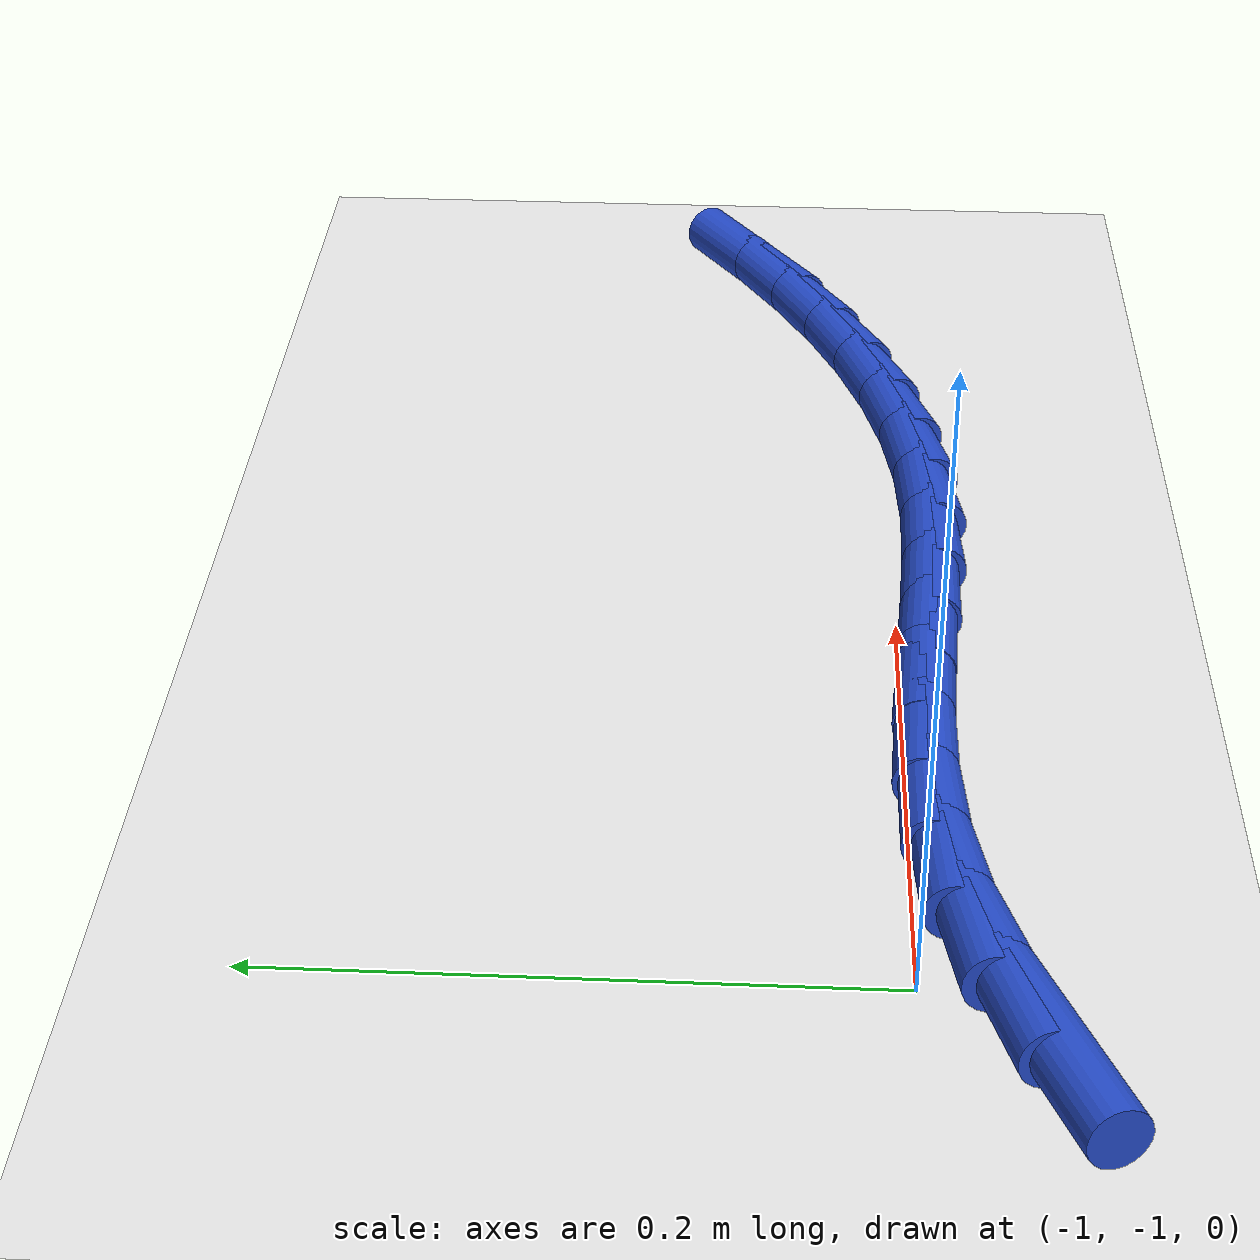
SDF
<sdf version="1.6">
 <world name="default">
  <model name="ground_plane">
   <static>1</static>
   <link name="link">
    <collision name="collision">
     <geometry><plane><normal>0 0 1</normal><size>100 100</size></plane></geometry>
     <surface><friction><ode><mu>100</mu><mu2>50</mu2></ode></friction></surface>
    </collision>
    <visual name="visual">
     <cast_shadows>0</cast_shadows>
     <geometry><plane><normal>0 0 1</normal><size>100 100</size></plane></geometry>
     <material>
      <script><uri>file://media/materials/scripts/gazebo.material</uri><name>Gazebo/WhiteGlow</name></script>
     </material>
    </visual>
   </link>
  </model>
  <model name="line">
   <link name="link_160">
    <pose>-1.0334889638026166 -1.0365193277761373 0.01 0 1.57 0.36346616206946203</pose>
    <collision name="collision">
     <geometry><cylinder><radius>0.01</radius><length>0.08</length></cylinder></geometry>
    </collision>
    <visual name="visual">
     <material>
      <script><name>Gazebo/Blue</name><uri>file://media/materials/scripts/gazebo.material</uri></script>
     </material>
     <geometry><cylinder><radius>0.01</radius><length>0.08</length></cylinder></geometry>
    </visual>
   </link>
   <link name="link_161">
    <pose>-1.0009943119618527 -1.0241594903651394 0.01 0 1.57 0.28004083432617044</pose>
    <collision name="collision">
     <geometry><cylinder><radius>0.01</radius><length>0.08</length></cylinder></geometry>
    </collision>
    <visual name="visual">
     <material>
      <script><name>Gazebo/Blue</name><uri>file://media/materials/scripts/gazebo.material</uri></script>
     </material>
     <geometry><cylinder><radius>0.01</radius><length>0.08</length></cylinder></geometry>
    </visual>
   </link>
   <link name="link_162">
    <pose>-0.9683311407783652 -1.0147656101165299 0.01 0 1.57 0.17125221643552943</pose>
    <collision name="collision">
     <geometry><cylinder><radius>0.01</radius><length>0.08</length></cylinder></geometry>
    </collision>
    <visual name="visual">
     <material>
      <script><name>Gazebo/Blue</name><uri>file://media/materials/scripts/gazebo.material</uri></script>
     </material>
     <geometry><cylinder><radius>0.01</radius><length>0.08</length></cylinder></geometry>
    </visual>
   </link>
   <link name="link_163">
    <pose>-0.9355507117204012 -1.009096359006948 0.01 0 1.57 0.06990026030439081</pose>
    <collision name="collision">
     <geometry><cylinder><radius>0.01</radius><length>0.08</length></cylinder></geometry>
    </collision>
    <visual name="visual">
     <material>
      <script><name>Gazebo/Blue</name><uri>file://media/materials/scripts/gazebo.material</uri></script>
     </material>
     <geometry><cylinder><radius>0.01</radius><length>0.08</length></cylinder></geometry>
    </visual>
   </link>
   <link name="link_164">
    <pose>-0.9026993224348686 -1.0067962910441364 0.01 0 1.57 -0.004092187498440386</pose>
    <collision name="collision">
     <geometry><cylinder><radius>0.01</radius><length>0.08</length></cylinder></geometry>
    </collision>
    <visual name="visual">
     <material>
      <script><name>Gazebo/Blue</name><uri>file://media/materials/scripts/gazebo.material</uri></script>
     </material>
     <geometry><cylinder><radius>0.01</radius><length>0.08</length></cylinder></geometry>
    </visual>
   </link>
   <link name="link_165">
    <pose>-0.8698206903547729 -1.0069308373223385 0.01 0 1.57 -0.04954954049186006</pose>
    <collision name="collision">
     <geometry><cylinder><radius>0.01</radius><length>0.08</length></cylinder></geometry>
    </collision>
    <visual name="visual">
     <material>
      <script><name>Gazebo/Blue</name><uri>file://media/materials/scripts/gazebo.material</uri></script>
     </material>
     <geometry><cylinder><radius>0.01</radius><length>0.08</length></cylinder></geometry>
    </visual>
   </link>
   <link name="link_166">
    <pose>-0.8369585108508343 -1.0085604771084853 0.01 0 1.57 -0.06651991937085709</pose>
    <collision name="collision">
     <geometry><cylinder><radius>0.01</radius><length>0.08</length></cylinder></geometry>
    </collision>
    <visual name="visual">
     <material>
      <script><name>Gazebo/Blue</name><uri>file://media/materials/scripts/gazebo.material</uri></script>
     </material>
     <geometry><cylinder><radius>0.01</radius><length>0.08</length></cylinder></geometry>
    </visual>
   </link>
   <link name="link_167">
    <pose>-0.8041564792937735 -1.0107456896695086 0.01 0 1.57 -0.055031974092396664</pose>
    <collision name="collision">
     <geometry><cylinder><radius>0.01</radius><length>0.08</length></cylinder></geometry>
    </collision>
    <visual name="visual">
     <material>
      <script><name>Gazebo/Blue</name><uri>file://media/materials/scripts/gazebo.material</uri></script>
     </material>
     <geometry><cylinder><radius>0.01</radius><length>0.08</length></cylinder></geometry>
    </visual>
   </link>
   <link name="link_168">
    <pose>-0.7714582910543111 -1.0125469542723393 0.01 0 1.57 -0.014677482857598822</pose>
    <collision name="collision">
     <geometry><cylinder><radius>0.01</radius><length>0.08</length></cylinder></geometry>
    </collision>
    <visual name="visual">
     <material>
      <script><name>Gazebo/Blue</name><uri>file://media/materials/scripts/gazebo.material</uri></script>
     </material>
     <geometry><cylinder><radius>0.01</radius><length>0.08</length></cylinder></geometry>
    </visual>
   </link>
   <link name="link_169">
    <pose>-0.7389076415031678 -1.0130247501839087 0.01 0 1.57 0.05497530772727707</pose>
    <collision name="collision">
     <geometry><cylinder><radius>0.01</radius><length>0.08</length></cylinder></geometry>
    </collision>
    <visual name="visual">
     <material>
      <script><name>Gazebo/Blue</name><uri>file://media/materials/scripts/gazebo.material</uri></script>
     </material>
     <geometry><cylinder><radius>0.01</radius><length>0.08</length></cylinder></geometry>
    </visual>
   </link>
   <link name="link_170">
    <pose>-0.7065483967690473 -1.0112439964037705 0.01 0 1.57 0.1419737744545109</pose>
    <collision name="collision">
     <geometry><cylinder><radius>0.01</radius><length>0.08</length></cylinder></geometry>
    </collision>
    <visual name="visual">
     <material>
      <script><name>Gazebo/Blue</name><uri>file://media/materials/scripts/gazebo.material</uri></script>
     </material>
     <geometry><cylinder><radius>0.01</radius><length>0.08</length></cylinder></geometry>
    </visual>
   </link>
   <link name="link_171">
    <pose>-0.6744392246731095 -1.006654458106512 0.01 0 1.57 0.2249773186367083</pose>
    <collision name="collision">
     <geometry><cylinder><radius>0.01</radius><length>0.08</length></cylinder></geometry>
    </collision>
    <visual name="visual">
     <material>
      <script><name>Gazebo/Blue</name><uri>file://media/materials/scripts/gazebo.material</uri></script>
     </material>
     <geometry><cylinder><radius>0.01</radius><length>0.08</length></cylinder></geometry>
    </visual>
   </link>
   <link name="link_172">
    <pose>-0.6426648290245319 -0.9993828399743907 0.01 0 1.57 0.3017408491559528</pose>
    <collision name="collision">
     <geometry><cylinder><radius>0.01</radius><length>0.08</length></cylinder></geometry>
    </collision>
    <visual name="visual">
     <material>
      <script><name>Gazebo/Blue</name><uri>file://media/materials/scripts/gazebo.material</uri></script>
     </material>
     <geometry><cylinder><radius>0.01</radius><length>0.08</length></cylinder></geometry>
    </visual>
   </link>
   <link name="link_173">
    <pose>-0.6113125584239002 -0.9896246116542217 0.01 0 1.57 0.3724378649180013</pose>
    <collision name="collision">
     <geometry><cylinder><radius>0.01</radius><length>0.08</length></cylinder></geometry>
    </collision>
    <visual name="visual">
     <material>
      <script><name>Gazebo/Blue</name><uri>file://media/materials/scripts/gazebo.material</uri></script>
     </material>
     <geometry><cylinder><radius>0.01</radius><length>0.08</length></cylinder></geometry>
    </visual>
   </link>
   <link name="link_174">
    <pose>-0.5804697614718004 -0.9775752427928207 0.01 0 1.57 0.4374481645040864</pose>
    <collision name="collision">
     <geometry><cylinder><radius>0.01</radius><length>0.08</length></cylinder></geometry>
    </collision>
    <visual name="visual">
     <material>
      <script><name>Gazebo/Blue</name><uri>file://media/materials/scripts/gazebo.material</uri></script>
     </material>
     <geometry><cylinder><radius>0.01</radius><length>0.08</length></cylinder></geometry>
    </visual>
   </link>
   <link name="link_175">
    <pose>-0.5502237867688181 -0.9634302030370032 0.01 0 1.57 0.4972749025713804</pose>
    <collision name="collision">
     <geometry><cylinder><radius>0.01</radius><length>0.08</length></cylinder></geometry>
    </collision>
    <visual name="visual">
     <material>
      <script><name>Gazebo/Blue</name><uri>file://media/materials/scripts/gazebo.material</uri></script>
     </material>
     <geometry><cylinder><radius>0.01</radius><length>0.08</length></cylinder></geometry>
    </visual>
   </link>
   <link name="link_176">
    <pose>-0.5206619829155384 -0.9473849620335846 0.01 0 1.57 0.5524827773916683</pose>
    <collision name="collision">
     <geometry><cylinder><radius>0.01</radius><length>0.08</length></cylinder></geometry>
    </collision>
    <visual name="visual">
     <material>
      <script><name>Gazebo/Blue</name><uri>file://media/materials/scripts/gazebo.material</uri></script>
     </material>
     <geometry><cylinder><radius>0.01</radius><length>0.08</length></cylinder></geometry>
    </visual>
   </link>
  </model>
 </world>
</sdf>
